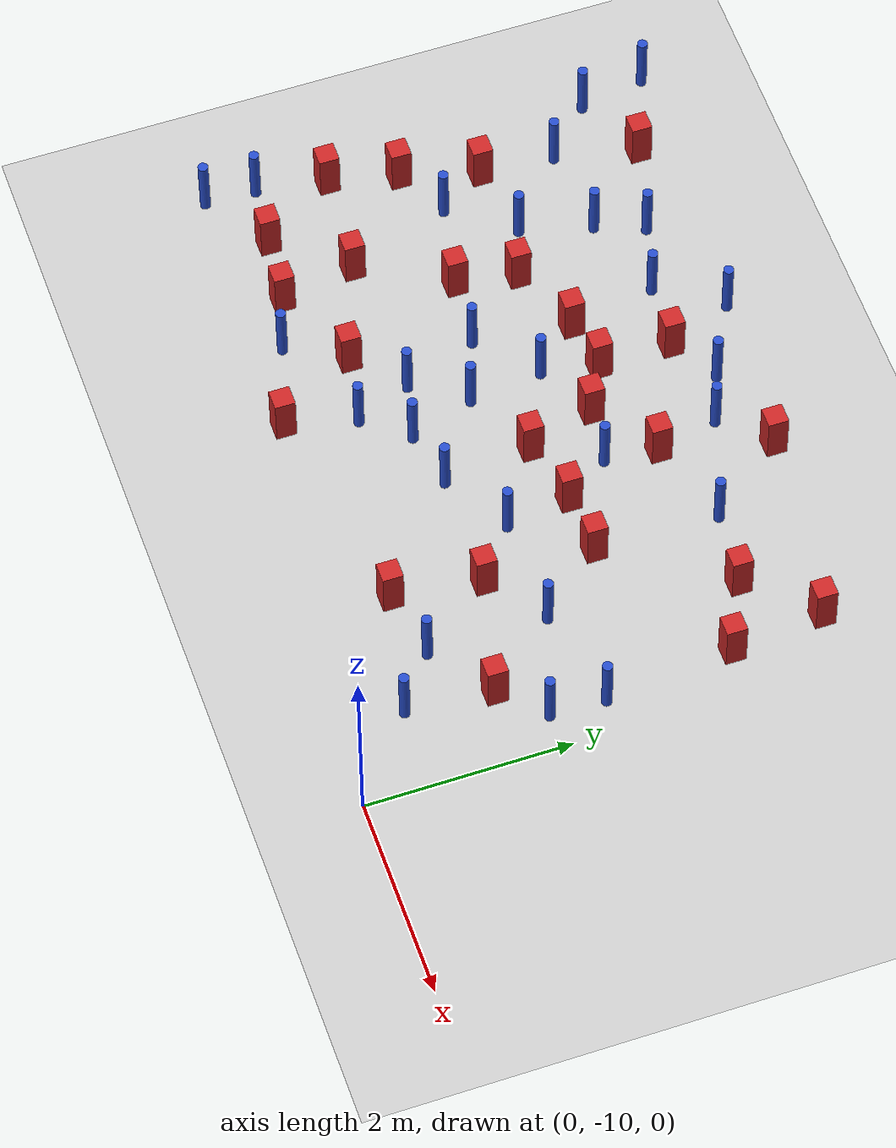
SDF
<sdf version="1.6">
 <world name="default">
  <model name="ground_plane">
   <static>1</static>
   <link name="link">
    <collision name="collision">
     <geometry><plane><normal>0 0 1</normal><size>100 100</size></plane></geometry>
     <surface><friction><ode><mu>100</mu><mu2>50</mu2></ode></friction></surface>
    </collision>
    <visual name="visual">
     <cast_shadows>0</cast_shadows>
     <geometry><plane><normal>0 0 1</normal><size>100 100</size></plane></geometry>
     <material>
      <ambient>1.0 1.0 1.0 1.0</ambient>
      <diffuse>0.8 0.8 0.8 1.0</diffuse>
      <specular>0.01 0.01 0.01 1.000000</specular>
     </material>
    </visual>
   </link>
  </model>
  <model name="square_post_obstacle0">
   <static>true</static>
   <pose>-6.3512197902 -6.70146782533 1.91545236811e-07 -7.35059704564e-06 1.12565212e-07 2.39332434364e-05</pose>
   <link name="link">
    <pose>0 0 0.25 0 -0 0</pose>
    <inertial>
     <mass>100</mass>
     <inertia>
      <ixx>0.166667</ixx>
      <ixy>0</ixy>
      <ixz>0</ixz>
      <iyy>0.166667</iyy>
      <iyz>0</iyz>
      <izz>0.166667</izz>
     </inertia>
    </inertial>
    <collision name="collision"><geometry><box><size>.2 .2 .5</size></box></geometry></collision>
    <visual name="visual">
     <geometry><box><size>.2 .2 .5</size></box></geometry>
     <material>
      <script><name>Gazebo/Red</name><uri>file://media/materials/scripts/gazebo.material</uri></script>
     </material>
    </visual>
   </link>
  </model>
  <model name="pole_obstacle2">
   <static>true</static>
   <pose>-5.39988394094 -5.87913840747 7.38925637345e-09 -8.47170692796e-08 1.24976764786e-08 -1.74513093032e-07</pose>
   <link name="link">
    <pose>0 0 0.3 0 -0 0</pose>
    <inertial>
     <mass>1</mass>
     <inertia><ixx>0.145833</ixx><ixy>0</ixy><ixz>0</ixz><iyy>0.145833</iyy><iyz>0</iyz><izz>0.125</izz></inertia>
    </inertial>
    <collision name="collision">
     <geometry><cylinder><radius>0.05</radius><length>.6</length></cylinder></geometry>
    </collision>
    <visual name="visual">
     <geometry><cylinder><radius>0.05</radius><length>.6</length></cylinder></geometry>
     <material>
      <script><name>Gazebo/Blue</name><uri>file://media/materials/scripts/gazebo.material</uri></script>
     </material>
    </visual>
   </link>
  </model>
  <model name="pole_obstacle3">
   <static>true</static>
   <pose>-4.52345772594 -5.6103119745 7.38925637345e-09 -8.47170692796e-08 1.24976764786e-08 -1.74513093032e-07</pose>
   <link name="link">
    <pose>0 0 0.3 0 -0 0</pose>
    <inertial>
     <mass>1</mass>
     <inertia><ixx>0.145833</ixx><ixy>0</ixy><ixz>0</ixz><iyy>0.145833</iyy><iyz>0</iyz><izz>0.125</izz></inertia>
    </inertial>
    <collision name="collision">
     <geometry><cylinder><radius>0.05</radius><length>.6</length></cylinder></geometry>
    </collision>
    <visual name="visual">
     <geometry><cylinder><radius>0.05</radius><length>.6</length></cylinder></geometry>
     <material>
      <script><name>Gazebo/Blue</name><uri>file://media/materials/scripts/gazebo.material</uri></script>
     </material>
    </visual>
   </link>
  </model>
  <model name="pole_obstacle5">
   <static>true</static>
   <pose>-2.810442116 -6.70199553143 7.38925637345e-09 -8.47170692798e-08 1.24976765033e-08 -1.74513093019e-07</pose>
   <link name="link">
    <pose>0 0 0.3 0 -0 0</pose>
    <inertial>
     <mass>1</mass>
     <inertia><ixx>0.145833</ixx><ixy>0</ixy><ixz>0</ixz><iyy>0.145833</iyy><iyz>0</iyz><izz>0.125</izz></inertia>
    </inertial>
    <collision name="collision">
     <geometry><cylinder><radius>0.05</radius><length>.6</length></cylinder></geometry>
    </collision>
    <visual name="visual">
     <geometry><cylinder><radius>0.05</radius><length>.6</length></cylinder></geometry>
     <material>
      <script><name>Gazebo/Blue</name><uri>file://media/materials/scripts/gazebo.material</uri></script>
     </material>
    </visual>
   </link>
  </model>
  <model name="pole_obstacle6">
   <static>true</static>
   <pose>-6.87049068792 -8.80188207975 7.38925637345e-09 -8.471706928e-08 1.24976765081e-08 -1.74513093015e-07</pose>
   <link name="link">
    <pose>0 0 0.3 0 -0 0</pose>
    <inertial>
     <mass>1</mass>
     <inertia><ixx>0.145833</ixx><ixy>0</ixy><ixz>0</ixz><iyy>0.145833</iyy><iyz>0</iyz><izz>0.125</izz></inertia>
    </inertial>
    <collision name="collision">
     <geometry><cylinder><radius>0.05</radius><length>.6</length></cylinder></geometry>
    </collision>
    <visual name="visual">
     <geometry><cylinder><radius>0.05</radius><length>.6</length></cylinder></geometry>
     <material>
      <script><name>Gazebo/Blue</name><uri>file://media/materials/scripts/gazebo.material</uri></script>
     </material>
    </visual>
   </link>
  </model>
  <model name="square_post_obstacle5">
   <static>true</static>
   <pose>-5.07548429831 -6.76126637863 1.91545236811e-07 -7.35059704564e-06 1.12565212e-07 2.39332434364e-05</pose>
   <link name="link">
    <pose>0 0 0.25 0 -0 0</pose>
    <inertial>
     <mass>100</mass>
     <inertia>
      <ixx>0.166667</ixx>
      <ixy>0</ixy>
      <ixz>0</ixz>
      <iyy>0.166667</iyy>
      <iyz>0</iyz>
      <izz>0.166667</izz>
     </inertia>
    </inertial>
    <collision name="collision"><geometry><box><size>.2 .2 .5</size></box></geometry></collision>
    <visual name="visual">
     <geometry><box><size>.2 .2 .5</size></box></geometry>
     <material>
      <script><name>Gazebo/Red</name><uri>file://media/materials/scripts/gazebo.material</uri></script>
     </material>
    </visual>
   </link>
  </model>
  <model name="square_post_obstacle15">
   <static>true</static>
   <pose>-6.57224055143 -7.45140259841 1.91545236811e-07 -7.35059704564e-06 1.12565212e-07 2.39332434364e-05</pose>
   <link name="link">
    <pose>0 0 0.25 0 -0 0</pose>
    <inertial>
     <mass>100</mass>
     <inertia>
      <ixx>0.166667</ixx>
      <ixy>0</ixy>
      <ixz>0</ixz>
      <iyy>0.166667</iyy>
      <iyz>0</iyz>
      <izz>0.166667</izz>
     </inertia>
    </inertial>
    <collision name="collision"><geometry><box><size>.2 .2 .5</size></box></geometry></collision>
    <visual name="visual">
     <geometry><box><size>.2 .2 .5</size></box></geometry>
     <material>
      <script><name>Gazebo/Red</name><uri>file://media/materials/scripts/gazebo.material</uri></script>
     </material>
    </visual>
   </link>
  </model>
  <model name="pole_obstacle22">
   <static>true</static>
   <pose>-6.93283457791 -4.84045211363 7.38925637345e-09 -8.47170692796e-08 1.24976764786e-08 -1.74513093032e-07</pose>
   <link name="link">
    <pose>0 0 0.3 0 -0 0</pose>
    <inertial>
     <mass>1</mass>
     <inertia><ixx>0.145833</ixx><ixy>0</ixy><ixz>0</ixz><iyy>0.145833</iyy><iyz>0</iyz><izz>0.125</izz></inertia>
    </inertial>
    <collision name="collision">
     <geometry><cylinder><radius>0.05</radius><length>.6</length></cylinder></geometry>
    </collision>
    <visual name="visual">
     <geometry><cylinder><radius>0.05</radius><length>.6</length></cylinder></geometry>
     <material>
      <script><name>Gazebo/Blue</name><uri>file://media/materials/scripts/gazebo.material</uri></script>
     </material>
    </visual>
   </link>
  </model>
  <model name="pole_obstacle27">
   <static>true</static>
   <pose>-2.89157052245 -5.57234434956 7.38925637345e-09 -8.47170692798e-08 1.24976765033e-08 -1.74513093019e-07</pose>
   <link name="link">
    <pose>0 0 0.3 0 -0 0</pose>
    <inertial>
     <mass>1</mass>
     <inertia><ixx>0.145833</ixx><ixy>0</ixy><ixz>0</ixz><iyy>0.145833</iyy><iyz>0</iyz><izz>0.125</izz></inertia>
    </inertial>
    <collision name="collision">
     <geometry><cylinder><radius>0.05</radius><length>.6</length></cylinder></geometry>
    </collision>
    <visual name="visual">
     <geometry><cylinder><radius>0.05</radius><length>.6</length></cylinder></geometry>
     <material>
      <script><name>Gazebo/Blue</name><uri>file://media/materials/scripts/gazebo.material</uri></script>
     </material>
    </visual>
   </link>
  </model>
  <model name="square_post_obstacle20">
   <static>true</static>
   <pose>-6.73766714522 -8.12133309598 1.91545236811e-07 -7.35059704564e-06 1.12565212e-07 2.39332434364e-05</pose>
   <link name="link">
    <pose>0 0 0.25 0 -0 0</pose>
    <inertial>
     <mass>100</mass>
     <inertia>
      <ixx>0.166667</ixx>
      <ixy>0</ixy>
      <ixz>0</ixz>
      <iyy>0.166667</iyy>
      <iyz>0</iyz>
      <izz>0.166667</izz>
     </inertia>
    </inertial>
    <collision name="collision"><geometry><box><size>.2 .2 .5</size></box></geometry></collision>
    <visual name="visual">
     <geometry><box><size>.2 .2 .5</size></box></geometry>
     <material>
      <script><name>Gazebo/Red</name><uri>file://media/materials/scripts/gazebo.material</uri></script>
     </material>
    </visual>
   </link>
  </model>
  <model name="square_post_obstacle21">
   <static>true</static>
   <pose>-0.441081011858 -6.31642284069 1.91545236811e-07 -7.35059704564e-06 1.12565212e-07 2.39332434364e-05</pose>
   <link name="link">
    <pose>0 0 0.25 0 -0 0</pose>
    <inertial>
     <mass>100</mass>
     <inertia>
      <ixx>0.166667</ixx>
      <ixy>0</ixy>
      <ixz>0</ixz>
      <iyy>0.166667</iyy>
      <iyz>0</iyz>
      <izz>0.166667</izz>
     </inertia>
    </inertial>
    <collision name="collision"><geometry><box><size>.2 .2 .5</size></box></geometry></collision>
    <visual name="visual">
     <geometry><box><size>.2 .2 .5</size></box></geometry>
     <material>
      <script><name>Gazebo/Red</name><uri>file://media/materials/scripts/gazebo.material</uri></script>
     </material>
    </visual>
   </link>
  </model>
  <model name="square_post_obstacle24">
   <static>true</static>
   <pose>-3.36370707958 -6.63593774003 1.91545236811e-07 -7.35059704564e-06 1.12565212e-07 2.39332434364e-05</pose>
   <link name="link">
    <pose>0 0 0.25 0 -0 0</pose>
    <inertial>
     <mass>100</mass>
     <inertia>
      <ixx>0.166667</ixx>
      <ixy>0</ixy>
      <ixz>0</ixz>
      <iyy>0.166667</iyy>
      <iyz>0</iyz>
      <izz>0.166667</izz>
     </inertia>
    </inertial>
    <collision name="collision"><geometry><box><size>.2 .2 .5</size></box></geometry></collision>
    <visual name="visual">
     <geometry><box><size>.2 .2 .5</size></box></geometry>
     <material>
      <script><name>Gazebo/Red</name><uri>file://media/materials/scripts/gazebo.material</uri></script>
     </material>
    </visual>
   </link>
  </model>
  <model name="pole_obstacle36">
   <static>true</static>
   <pose>-0.343696706962 -8.11001950035 7.38925637345e-09 -8.47170692796e-08 1.24976764724e-08 -1.74513093036e-07</pose>
   <link name="link">
    <pose>0 0 0.3 0 -0 0</pose>
    <inertial>
     <mass>1</mass>
     <inertia><ixx>0.145833</ixx><ixy>0</ixy><ixz>0</ixz><iyy>0.145833</iyy><iyz>0</iyz><izz>0.125</izz></inertia>
    </inertial>
    <collision name="collision">
     <geometry><cylinder><radius>0.05</radius><length>.6</length></cylinder></geometry>
    </collision>
    <visual name="visual">
     <geometry><cylinder><radius>0.05</radius><length>.6</length></cylinder></geometry>
     <material>
      <script><name>Gazebo/Blue</name><uri>file://media/materials/scripts/gazebo.material</uri></script>
     </material>
    </visual>
   </link>
  </model>
  <model name="pole_obstacle41">
   <static>true</static>
   <pose>-3.64347998608 -8.2976124966 7.38925637345e-09 -8.47170692793e-08 1.24976764408e-08 -1.74513093041e-07</pose>
   <link name="link">
    <pose>0 0 0.3 0 -0 0</pose>
    <inertial>
     <mass>1</mass>
     <inertia><ixx>0.145833</ixx><ixy>0</ixy><ixz>0</ixz><iyy>0.145833</iyy><iyz>0</iyz><izz>0.125</izz></inertia>
    </inertial>
    <collision name="collision">
     <geometry><cylinder><radius>0.05</radius><length>.6</length></cylinder></geometry>
    </collision>
    <visual name="visual">
     <geometry><cylinder><radius>0.05</radius><length>.6</length></cylinder></geometry>
     <material>
      <script><name>Gazebo/Blue</name><uri>file://media/materials/scripts/gazebo.material</uri></script>
     </material>
    </visual>
   </link>
  </model>
  <model name="pole_obstacle47">
   <static>true</static>
   <pose>-6.0551781899 -7.17259727057 7.38925637345e-09 -8.47170692796e-08 1.24976764786e-08 -1.74513093032e-07</pose>
   <link name="link">
    <pose>0 0 0.3 0 -0 0</pose>
    <inertial>
     <mass>1</mass>
     <inertia><ixx>0.145833</ixx><ixy>0</ixy><ixz>0</ixz><iyy>0.145833</iyy><iyz>0</iyz><izz>0.125</izz></inertia>
    </inertial>
    <collision name="collision">
     <geometry><cylinder><radius>0.05</radius><length>.6</length></cylinder></geometry>
    </collision>
    <visual name="visual">
     <geometry><cylinder><radius>0.05</radius><length>.6</length></cylinder></geometry>
     <material>
      <script><name>Gazebo/Blue</name><uri>file://media/materials/scripts/gazebo.material</uri></script>
     </material>
    </visual>
   </link>
  </model>
  <model name="square_post_obstacle37">
   <static>true</static>
   <pose>-0.727940815586 -8.50083348438 1.91545236811e-07 -7.35059704564e-06 1.12565212e-07 2.39332434364e-05</pose>
   <link name="link">
    <pose>0 0 0.25 0 -0 0</pose>
    <inertial>
     <mass>100</mass>
     <inertia>
      <ixx>0.166667</ixx>
      <ixy>0</ixy>
      <ixz>0</ixz>
      <iyy>0.166667</iyy>
      <iyz>0</iyz>
      <izz>0.166667</izz>
     </inertia>
    </inertial>
    <collision name="collision"><geometry><box><size>.2 .2 .5</size></box></geometry></collision>
    <visual name="visual">
     <geometry><box><size>.2 .2 .5</size></box></geometry>
     <material>
      <script><name>Gazebo/Red</name><uri>file://media/materials/scripts/gazebo.material</uri></script>
     </material>
    </visual>
   </link>
  </model>
  <model name="square_post_obstacle44">
   <static>true</static>
   <pose>-2.00762837462 -9.06628931698 1.91545236811e-07 -7.35059704564e-06 1.12565212e-07 2.39332434364e-05</pose>
   <link name="link">
    <pose>0 0 0.25 0 -0 0</pose>
    <inertial>
     <mass>100</mass>
     <inertia>
      <ixx>0.166667</ixx>
      <ixy>0</ixy>
      <ixz>0</ixz>
      <iyy>0.166667</iyy>
      <iyz>0</iyz>
      <izz>0.166667</izz>
     </inertia>
    </inertial>
    <collision name="collision"><geometry><box><size>.2 .2 .5</size></box></geometry></collision>
    <visual name="visual">
     <geometry><box><size>.2 .2 .5</size></box></geometry>
     <material>
      <script><name>Gazebo/Red</name><uri>file://media/materials/scripts/gazebo.material</uri></script>
     </material>
    </visual>
   </link>
  </model>
  <model name="pole_obstacle63">
   <static>true</static>
   <pose>-1.33499532294 -7.77846057803 7.38925637345e-09 -8.47170692799e-08 1.24976765033e-08 -1.74513093018e-07</pose>
   <link name="link">
    <pose>0 0 0.3 0 -0 0</pose>
    <inertial>
     <mass>1</mass>
     <inertia><ixx>0.145833</ixx><ixy>0</ixy><ixz>0</ixz><iyy>0.145833</iyy><iyz>0</iyz><izz>0.125</izz></inertia>
    </inertial>
    <collision name="collision">
     <geometry><cylinder><radius>0.05</radius><length>.6</length></cylinder></geometry>
    </collision>
    <visual name="visual">
     <geometry><cylinder><radius>0.05</radius><length>.6</length></cylinder></geometry>
     <material>
      <script><name>Gazebo/Blue</name><uri>file://media/materials/scripts/gazebo.material</uri></script>
     </material>
    </visual>
   </link>
  </model>
  <model name="pole_obstacle68">
   <static>true</static>
   <pose>-3.98675949757 -8.71420065586 7.38925637345e-09 -8.47170692798e-08 1.24976764891e-08 -1.74513093027e-07</pose>
   <link name="link">
    <pose>0 0 0.3 0 -0 0</pose>
    <inertial>
     <mass>1</mass>
     <inertia><ixx>0.145833</ixx><ixy>0</ixy><ixz>0</ixz><iyy>0.145833</iyy><iyz>0</iyz><izz>0.125</izz></inertia>
    </inertial>
    <collision name="collision">
     <geometry><cylinder><radius>0.05</radius><length>.6</length></cylinder></geometry>
    </collision>
    <visual name="visual">
     <geometry><cylinder><radius>0.05</radius><length>.6</length></cylinder></geometry>
     <material>
      <script><name>Gazebo/Blue</name><uri>file://media/materials/scripts/gazebo.material</uri></script>
     </material>
    </visual>
   </link>
  </model>
  <model name="square_post_obstacle55">
   <static>true</static>
   <pose>-2.74329294276 -6.19086282878 1.91545236811e-07 -7.35059704564e-06 1.12565212e-07 2.39332434364e-05</pose>
   <link name="link">
    <pose>0 0 0.25 0 -0 0</pose>
    <inertial>
     <mass>100</mass>
     <inertia>
      <ixx>0.166667</ixx>
      <ixy>0</ixy>
      <ixz>0</ixz>
      <iyy>0.166667</iyy>
      <iyz>0</iyz>
      <izz>0.166667</izz>
     </inertia>
    </inertial>
    <collision name="collision"><geometry><box><size>.2 .2 .5</size></box></geometry></collision>
    <visual name="visual">
     <geometry><box><size>.2 .2 .5</size></box></geometry>
     <material>
      <script><name>Gazebo/Red</name><uri>file://media/materials/scripts/gazebo.material</uri></script>
     </material>
    </visual>
   </link>
  </model>
  <model name="square_post_obstacle58">
   <static>true</static>
   <pose>-1.11318636053 -6.00602562814 1.91545236811e-07 -7.35059704564e-06 1.12565212e-07 2.39332434364e-05</pose>
   <link name="link">
    <pose>0 0 0.25 0 -0 0</pose>
    <inertial>
     <mass>100</mass>
     <inertia>
      <ixx>0.166667</ixx>
      <ixy>0</ixy>
      <ixz>0</ixz>
      <iyy>0.166667</iyy>
      <iyz>0</iyz>
      <izz>0.166667</izz>
     </inertia>
    </inertial>
    <collision name="collision"><geometry><box><size>.2 .2 .5</size></box></geometry></collision>
    <visual name="visual">
     <geometry><box><size>.2 .2 .5</size></box></geometry>
     <material>
      <script><name>Gazebo/Red</name><uri>file://media/materials/scripts/gazebo.material</uri></script>
     </material>
    </visual>
   </link>
  </model>
  <model name="pole_obstacle73">
   <static>true</static>
   <pose>-6.3123474597 -5.96353737594 7.38925637345e-09 -8.47170692796e-08 1.24976764786e-08 -1.74513093032e-07</pose>
   <link name="link">
    <pose>0 0 0.3 0 -0 0</pose>
    <inertial>
     <mass>1</mass>
     <inertia><ixx>0.145833</ixx><ixy>0</ixy><ixz>0</ixz><iyy>0.145833</iyy><iyz>0</iyz><izz>0.125</izz></inertia>
    </inertial>
    <collision name="collision">
     <geometry><cylinder><radius>0.05</radius><length>.6</length></cylinder></geometry>
    </collision>
    <visual name="visual">
     <geometry><cylinder><radius>0.05</radius><length>.6</length></cylinder></geometry>
     <material>
      <script><name>Gazebo/Blue</name><uri>file://media/materials/scripts/gazebo.material</uri></script>
     </material>
    </visual>
   </link>
  </model>
  <model name="pole_obstacle74">
   <static>true</static>
   <pose>-3.9459415511 -6.92952535661 7.38925637345e-09 -8.47170692794e-08 1.24976764468e-08 -1.7451309304e-07</pose>
   <link name="link">
    <pose>0 0 0.3 0 -0 0</pose>
    <inertial>
     <mass>1</mass>
     <inertia><ixx>0.145833</ixx><ixy>0</ixy><ixz>0</ixz><iyy>0.145833</iyy><iyz>0</iyz><izz>0.125</izz></inertia>
    </inertial>
    <collision name="collision">
     <geometry><cylinder><radius>0.05</radius><length>.6</length></cylinder></geometry>
    </collision>
    <visual name="visual">
     <geometry><cylinder><radius>0.05</radius><length>.6</length></cylinder></geometry>
     <material>
      <script><name>Gazebo/Blue</name><uri>file://media/materials/scripts/gazebo.material</uri></script>
     </material>
    </visual>
   </link>
  </model>
  <model name="pole_obstacle85">
   <static>true</static>
   <pose>-6.89441321147 -9.30156373677 7.38925637345e-09 -8.471706928e-08 1.24976765081e-08 -1.74513093015e-07</pose>
   <link name="link">
    <pose>0 0 0.3 0 -0 0</pose>
    <inertial>
     <mass>1</mass>
     <inertia><ixx>0.145833</ixx><ixy>0</ixy><ixz>0</ixz><iyy>0.145833</iyy><iyz>0</iyz><izz>0.125</izz></inertia>
    </inertial>
    <collision name="collision">
     <geometry><cylinder><radius>0.05</radius><length>.6</length></cylinder></geometry>
    </collision>
    <visual name="visual">
     <geometry><cylinder><radius>0.05</radius><length>.6</length></cylinder></geometry>
     <material>
      <script><name>Gazebo/Blue</name><uri>file://media/materials/scripts/gazebo.material</uri></script>
     </material>
    </visual>
   </link>
  </model>
  <model name="square_post_obstacle80">
   <static>true</static>
   <pose>-5.67727545034 -8.21616542132 1.91545236811e-07 -7.35059704564e-06 1.12565212e-07 2.39332434364e-05</pose>
   <link name="link">
    <pose>0 0 0.25 0 -0 0</pose>
    <inertial>
     <mass>100</mass>
     <inertia>
      <ixx>0.166667</ixx>
      <ixy>0</ixy>
      <ixz>0</ixz>
      <iyy>0.166667</iyy>
      <iyz>0</iyz>
      <izz>0.166667</izz>
     </inertia>
    </inertial>
    <collision name="collision"><geometry><box><size>.2 .2 .5</size></box></geometry></collision>
    <visual name="visual">
     <geometry><box><size>.2 .2 .5</size></box></geometry>
     <material>
      <script><name>Gazebo/Red</name><uri>file://media/materials/scripts/gazebo.material</uri></script>
     </material>
    </visual>
   </link>
  </model>
  <model name="square_post_obstacle89">
   <static>true</static>
   <pose>-6.11698900111 -5.16930960928 1.91545236811e-07 -7.35059704564e-06 1.12565212e-07 2.39332434364e-05</pose>
   <link name="link">
    <pose>0 0 0.25 0 -0 0</pose>
    <inertial>
     <mass>100</mass>
     <inertia>
      <ixx>0.166667</ixx>
      <ixy>0</ixy>
      <ixz>0</ixz>
      <iyy>0.166667</iyy>
      <iyz>0</iyz>
      <izz>0.166667</izz>
     </inertia>
    </inertial>
    <collision name="collision"><geometry><box><size>.2 .2 .5</size></box></geometry></collision>
    <visual name="visual">
     <geometry><box><size>.2 .2 .5</size></box></geometry>
     <material>
      <script><name>Gazebo/Red</name><uri>file://media/materials/scripts/gazebo.material</uri></script>
     </material>
    </visual>
   </link>
  </model>
  <model name="pole_obstacle99">
   <static>true</static>
   <pose>-5.59341617314 -6.5724748177 7.38925637345e-09 -8.47170692796e-08 1.24976764786e-08 -1.74513093032e-07</pose>
   <link name="link">
    <pose>0 0 0.3 0 -0 0</pose>
    <inertial>
     <mass>1</mass>
     <inertia><ixx>0.145833</ixx><ixy>0</ixy><ixz>0</ixz><iyy>0.145833</iyy><iyz>0</iyz><izz>0.125</izz></inertia>
    </inertial>
    <collision name="collision">
     <geometry><cylinder><radius>0.05</radius><length>.6</length></cylinder></geometry>
    </collision>
    <visual name="visual">
     <geometry><cylinder><radius>0.05</radius><length>.6</length></cylinder></geometry>
     <material>
      <script><name>Gazebo/Blue</name><uri>file://media/materials/scripts/gazebo.material</uri></script>
     </material>
    </visual>
   </link>
  </model>
  <model name="pole_obstacle109">
   <static>true</static>
   <pose>-0.804273129045 -9.33447368787 7.38925637345e-09 -8.47170692797e-08 1.249767648e-08 -1.74513093032e-07</pose>
   <link name="link">
    <pose>0 0 0.3 0 -0 0</pose>
    <inertial>
     <mass>1</mass>
     <inertia><ixx>0.145833</ixx><ixy>0</ixy><ixz>0</ixz><iyy>0.145833</iyy><iyz>0</iyz><izz>0.125</izz></inertia>
    </inertial>
    <collision name="collision">
     <geometry><cylinder><radius>0.05</radius><length>.6</length></cylinder></geometry>
    </collision>
    <visual name="visual">
     <geometry><cylinder><radius>0.05</radius><length>.6</length></cylinder></geometry>
     <material>
      <script><name>Gazebo/Blue</name><uri>file://media/materials/scripts/gazebo.material</uri></script>
     </material>
    </visual>
   </link>
  </model>
  <model name="square_post_obstacle108">
   <static>true</static>
   <pose>-1.883781542 -8.20645368936 1.91545236811e-07 -7.35059704564e-06 1.12565212e-07 2.39332434364e-05</pose>
   <link name="link">
    <pose>0 0 0.25 0 -0 0</pose>
    <inertial>
     <mass>100</mass>
     <inertia>
      <ixx>0.166667</ixx>
      <ixy>0</ixy>
      <ixz>0</ixz>
      <iyy>0.166667</iyy>
      <iyz>0</iyz>
      <izz>0.166667</izz>
     </inertia>
    </inertial>
    <collision name="collision"><geometry><box><size>.2 .2 .5</size></box></geometry></collision>
    <visual name="visual">
     <geometry><box><size>.2 .2 .5</size></box></geometry>
     <material>
      <script><name>Gazebo/Red</name><uri>file://media/materials/scripts/gazebo.material</uri></script>
     </material>
    </visual>
   </link>
  </model>
  <model name="square_post_obstacle114">
   <static>true</static>
   <pose>-4.15753286613 -9.39936051822 1.91545236811e-07 -7.35059704564e-06 1.12565212e-07 2.39332434364e-05</pose>
   <link name="link">
    <pose>0 0 0.25 0 -0 0</pose>
    <inertial>
     <mass>100</mass>
     <inertia>
      <ixx>0.166667</ixx>
      <ixy>0</ixy>
      <ixz>0</ixz>
      <iyy>0.166667</iyy>
      <iyz>0</iyz>
      <izz>0.166667</izz>
     </inertia>
    </inertial>
    <collision name="collision"><geometry><box><size>.2 .2 .5</size></box></geometry></collision>
    <visual name="visual">
     <geometry><box><size>.2 .2 .5</size></box></geometry>
     <material>
      <script><name>Gazebo/Red</name><uri>file://media/materials/scripts/gazebo.material</uri></script>
     </material>
    </visual>
   </link>
  </model>
  <model name="square_post_obstacle121">
   <static>true</static>
   <pose>-3.83797552697 -5.66766873882 1.91545236811e-07 -7.35059704564e-06 1.12565212e-07 2.39332434364e-05</pose>
   <link name="link">
    <pose>0 0 0.25 0 -0 0</pose>
    <inertial>
     <mass>100</mass>
     <inertia>
      <ixx>0.166667</ixx>
      <ixy>0</ixy>
      <ixz>0</ixz>
      <iyy>0.166667</iyy>
      <iyz>0</iyz>
      <izz>0.166667</izz>
     </inertia>
    </inertial>
    <collision name="collision"><geometry><box><size>.2 .2 .5</size></box></geometry></collision>
    <visual name="visual">
     <geometry><box><size>.2 .2 .5</size></box></geometry>
     <material>
      <script><name>Gazebo/Red</name><uri>file://media/materials/scripts/gazebo.material</uri></script>
     </material>
    </visual>
   </link>
  </model>
  <model name="pole_obstacle123">
   <static>true</static>
   <pose>-5.01036146525 -9.13374318421 7.38925637345e-09 -8.471706928e-08 1.24976765081e-08 -1.74513093015e-07</pose>
   <link name="link">
    <pose>0 0 0.3 0 -0 0</pose>
    <inertial>
     <mass>1</mass>
     <inertia><ixx>0.145833</ixx><ixy>0</ixy><ixz>0</ixz><iyy>0.145833</iyy><iyz>0</iyz><izz>0.125</izz></inertia>
    </inertial>
    <collision name="collision">
     <geometry><cylinder><radius>0.05</radius><length>.6</length></cylinder></geometry>
    </collision>
    <visual name="visual">
     <geometry><cylinder><radius>0.05</radius><length>.6</length></cylinder></geometry>
     <material>
      <script><name>Gazebo/Blue</name><uri>file://media/materials/scripts/gazebo.material</uri></script>
     </material>
    </visual>
   </link>
  </model>
  <model name="pole_obstacle124">
   <static>true</static>
   <pose>-1.33243832689 -8.93993852028 7.38925637345e-09 -8.47170692798e-08 1.24976764881e-08 -1.74513093027e-07</pose>
   <link name="link">
    <pose>0 0 0.3 0 -0 0</pose>
    <inertial>
     <mass>1</mass>
     <inertia><ixx>0.145833</ixx><ixy>0</ixy><ixz>0</ixz><iyy>0.145833</iyy><iyz>0</iyz><izz>0.125</izz></inertia>
    </inertial>
    <collision name="collision">
     <geometry><cylinder><radius>0.05</radius><length>.6</length></cylinder></geometry>
    </collision>
    <visual name="visual">
     <geometry><cylinder><radius>0.05</radius><length>.6</length></cylinder></geometry>
     <material>
      <script><name>Gazebo/Blue</name><uri>file://media/materials/scripts/gazebo.material</uri></script>
     </material>
    </visual>
   </link>
  </model>
  <model name="square_post_obstacle136">
   <static>true</static>
   <pose>-0.534241347155 -5.4085730771 1.91545236811e-07 -7.35059704564e-06 1.12565212e-07 2.39332434364e-05</pose>
   <link name="link">
    <pose>0 0 0.25 0 -0 0</pose>
    <inertial>
     <mass>100</mass>
     <inertia>
      <ixx>0.166667</ixx>
      <ixy>0</ixy>
      <ixz>0</ixz>
      <iyy>0.166667</iyy>
      <iyz>0</iyz>
      <izz>0.166667</izz>
     </inertia>
    </inertial>
    <collision name="collision"><geometry><box><size>.2 .2 .5</size></box></geometry></collision>
    <visual name="visual">
     <geometry><box><size>.2 .2 .5</size></box></geometry>
     <material>
      <script><name>Gazebo/Red</name><uri>file://media/materials/scripts/gazebo.material</uri></script>
     </material>
    </visual>
   </link>
  </model>
  <model name="pole_obstacle146">
   <static>true</static>
   <pose>-2.41075248903 -7.79369760753 7.38925637345e-09 -8.47170692798e-08 1.24976765033e-08 -1.74513093019e-07</pose>
   <link name="link">
    <pose>0 0 0.3 0 -0 0</pose>
    <inertial>
     <mass>1</mass>
     <inertia><ixx>0.145833</ixx><ixy>0</ixy><ixz>0</ixz><iyy>0.145833</iyy><iyz>0</iyz><izz>0.125</izz></inertia>
    </inertial>
    <collision name="collision">
     <geometry><cylinder><radius>0.05</radius><length>.6</length></cylinder></geometry>
    </collision>
    <visual name="visual">
     <geometry><cylinder><radius>0.05</radius><length>.6</length></cylinder></geometry>
     <material>
      <script><name>Gazebo/Blue</name><uri>file://media/materials/scripts/gazebo.material</uri></script>
     </material>
    </visual>
   </link>
  </model>
  <model name="pole_obstacle147">
   <static>true</static>
   <pose>-1.87128350248 -5.91327902509 7.38925637345e-09 -8.47170692799e-08 1.24976765033e-08 -1.74513093018e-07</pose>
   <link name="link">
    <pose>0 0 0.3 0 -0 0</pose>
    <inertial>
     <mass>1</mass>
     <inertia><ixx>0.145833</ixx><ixy>0</ixy><ixz>0</ixz><iyy>0.145833</iyy><iyz>0</iyz><izz>0.125</izz></inertia>
    </inertial>
    <collision name="collision">
     <geometry><cylinder><radius>0.05</radius><length>.6</length></cylinder></geometry>
    </collision>
    <visual name="visual">
     <geometry><cylinder><radius>0.05</radius><length>.6</length></cylinder></geometry>
     <material>
      <script><name>Gazebo/Blue</name><uri>file://media/materials/scripts/gazebo.material</uri></script>
     </material>
    </visual>
   </link>
  </model>
  <model name="pole_obstacle152">
   <static>true</static>
   <pose>-0.322843855971 -7.57031097677 7.38925637345e-09 -8.471706928e-08 1.24976765079e-08 -1.74513093015e-07</pose>
   <link name="link">
    <pose>0 0 0.3 0 -0 0</pose>
    <inertial>
     <mass>1</mass>
     <inertia><ixx>0.145833</ixx><ixy>0</ixy><ixz>0</ixz><iyy>0.145833</iyy><iyz>0</iyz><izz>0.125</izz></inertia>
    </inertial>
    <collision name="collision">
     <geometry><cylinder><radius>0.05</radius><length>.6</length></cylinder></geometry>
    </collision>
    <visual name="visual">
     <geometry><cylinder><radius>0.05</radius><length>.6</length></cylinder></geometry>
     <material>
      <script><name>Gazebo/Blue</name><uri>file://media/materials/scripts/gazebo.material</uri></script>
     </material>
    </visual>
   </link>
  </model>
  <model name="pole_obstacle153">
   <static>true</static>
   <pose>-3.06489835788 -8.17871671743 7.38925637345e-09 -8.47170692793e-08 1.24976764408e-08 -1.74513093041e-07</pose>
   <link name="link">
    <pose>0 0 0.3 0 -0 0</pose>
    <inertial>
     <mass>1</mass>
     <inertia><ixx>0.145833</ixx><ixy>0</ixy><ixz>0</ixz><iyy>0.145833</iyy><iyz>0</iyz><izz>0.125</izz></inertia>
    </inertial>
    <collision name="collision">
     <geometry><cylinder><radius>0.05</radius><length>.6</length></cylinder></geometry>
    </collision>
    <visual name="visual">
     <geometry><cylinder><radius>0.05</radius><length>.6</length></cylinder></geometry>
     <material>
      <script><name>Gazebo/Blue</name><uri>file://media/materials/scripts/gazebo.material</uri></script>
     </material>
    </visual>
   </link>
  </model>
  <model name="pole_obstacle160">
   <static>true</static>
   <pose>-4.10963742803 -5.002402878 7.38925637345e-09 -8.47170692796e-08 1.24976764786e-08 -1.74513093032e-07</pose>
   <link name="link">
    <pose>0 0 0.3 0 -0 0</pose>
    <inertial>
     <mass>1</mass>
     <inertia><ixx>0.145833</ixx><ixy>0</ixy><ixz>0</ixz><iyy>0.145833</iyy><iyz>0</iyz><izz>0.125</izz></inertia>
    </inertial>
    <collision name="collision">
     <geometry><cylinder><radius>0.05</radius><length>.6</length></cylinder></geometry>
    </collision>
    <visual name="visual">
     <geometry><cylinder><radius>0.05</radius><length>.6</length></cylinder></geometry>
     <material>
      <script><name>Gazebo/Blue</name><uri>file://media/materials/scripts/gazebo.material</uri></script>
     </material>
    </visual>
   </link>
  </model>
  <model name="pole_obstacle162">
   <static>true</static>
   <pose>-4.21085236895 -8.16012603941 7.38925637345e-09 -8.471706928e-08 1.24976765081e-08 -1.74513093015e-07</pose>
   <link name="link">
    <pose>0 0 0.3 0 -0 0</pose>
    <inertial>
     <mass>1</mass>
     <inertia><ixx>0.145833</ixx><ixy>0</ixy><ixz>0</ixz><iyy>0.145833</iyy><iyz>0</iyz><izz>0.125</izz></inertia>
    </inertial>
    <collision name="collision">
     <geometry><cylinder><radius>0.05</radius><length>.6</length></cylinder></geometry>
    </collision>
    <visual name="visual">
     <geometry><cylinder><radius>0.05</radius><length>.6</length></cylinder></geometry>
     <material>
      <script><name>Gazebo/Blue</name><uri>file://media/materials/scripts/gazebo.material</uri></script>
     </material>
    </visual>
   </link>
  </model>
  <model name="square_post_obstacle157">
   <static>true</static>
   <pose>-5.17941076749 -7.35699127891 1.91545236811e-07 -7.35059704564e-06 1.12565212e-07 2.39332434364e-05</pose>
   <link name="link">
    <pose>0 0 0.25 0 -0 0</pose>
    <inertial>
     <mass>100</mass>
     <inertia>
      <ixx>0.166667</ixx>
      <ixy>0</ixy>
      <ixz>0</ixz>
      <iyy>0.166667</iyy>
      <iyz>0</iyz>
      <izz>0.166667</izz>
     </inertia>
    </inertial>
    <collision name="collision"><geometry><box><size>.2 .2 .5</size></box></geometry></collision>
    <visual name="visual">
     <geometry><box><size>.2 .2 .5</size></box></geometry>
     <material>
      <script><name>Gazebo/Red</name><uri>file://media/materials/scripts/gazebo.material</uri></script>
     </material>
    </visual>
   </link>
  </model>
  <model name="pole_obstacle166">
   <static>true</static>
   <pose>-5.21358893601 -5.41015380495 7.38925637345e-09 -8.47170692796e-08 1.24976764786e-08 -1.74513093032e-07</pose>
   <link name="link">
    <pose>0 0 0.3 0 -0 0</pose>
    <inertial>
     <mass>1</mass>
     <inertia><ixx>0.145833</ixx><ixy>0</ixy><ixz>0</ixz><iyy>0.145833</iyy><iyz>0</iyz><izz>0.125</izz></inertia>
    </inertial>
    <collision name="collision">
     <geometry><cylinder><radius>0.05</radius><length>.6</length></cylinder></geometry>
    </collision>
    <visual name="visual">
     <geometry><cylinder><radius>0.05</radius><length>.6</length></cylinder></geometry>
     <material>
      <script><name>Gazebo/Blue</name><uri>file://media/materials/scripts/gazebo.material</uri></script>
     </material>
    </visual>
   </link>
  </model>
  <model name="square_post_obstacle166">
   <static>true</static>
   <pose>-3.1501099521 -7.31124188229 1.91545236811e-07 -7.35059704564e-06 1.12565212e-07 2.39332434364e-05</pose>
   <link name="link">
    <pose>0 0 0.25 0 -0 0</pose>
    <inertial>
     <mass>100</mass>
     <inertia>
      <ixx>0.166667</ixx>
      <ixy>0</ixy>
      <ixz>0</ixz>
      <iyy>0.166667</iyy>
      <iyz>0</iyz>
      <izz>0.166667</izz>
     </inertia>
    </inertial>
    <collision name="collision"><geometry><box><size>.2 .2 .5</size></box></geometry></collision>
    <visual name="visual">
     <geometry><box><size>.2 .2 .5</size></box></geometry>
     <material>
      <script><name>Gazebo/Red</name><uri>file://media/materials/scripts/gazebo.material</uri></script>
     </material>
    </visual>
   </link>
  </model>
  <model name="square_post_obstacle168">
   <static>true</static>
   <pose>-2.49380710719 -7.16336011091 1.91545236811e-07 -7.35059704564e-06 1.12565212e-07 2.39332434364e-05</pose>
   <link name="link">
    <pose>0 0 0.25 0 -0 0</pose>
    <inertial>
     <mass>100</mass>
     <inertia>
      <ixx>0.166667</ixx>
      <ixy>0</ixy>
      <ixz>0</ixz>
      <iyy>0.166667</iyy>
      <iyz>0</iyz>
      <izz>0.166667</izz>
     </inertia>
    </inertial>
    <collision name="collision"><geometry><box><size>.2 .2 .5</size></box></geometry></collision>
    <visual name="visual">
     <geometry><box><size>.2 .2 .5</size></box></geometry>
     <material>
      <script><name>Gazebo/Red</name><uri>file://media/materials/scripts/gazebo.material</uri></script>
     </material>
    </visual>
   </link>
  </model>
  <model name="square_post_obstacle175">
   <static>true</static>
   <pose>-4.67249819325 -8.58504659453 1.91545236811e-07 -7.35059704564e-06 1.12565212e-07 2.39332434364e-05</pose>
   <link name="link">
    <pose>0 0 0.25 0 -0 0</pose>
    <inertial>
     <mass>100</mass>
     <inertia>
      <ixx>0.166667</ixx>
      <ixy>0</ixy>
      <ixz>0</ixz>
      <iyy>0.166667</iyy>
      <iyz>0</iyz>
      <izz>0.166667</izz>
     </inertia>
    </inertial>
    <collision name="collision"><geometry><box><size>.2 .2 .5</size></box></geometry></collision>
    <visual name="visual">
     <geometry><box><size>.2 .2 .5</size></box></geometry>
     <material>
      <script><name>Gazebo/Red</name><uri>file://media/materials/scripts/gazebo.material</uri></script>
     </material>
    </visual>
   </link>
  </model>
  <model name="square_post_obstacle176">
   <static>true</static>
   <pose>-4.356689426 -6.47855273673 1.91545236811e-07 -7.35059704564e-06 1.12565212e-07 2.39332434364e-05</pose>
   <link name="link">
    <pose>0 0 0.25 0 -0 0</pose>
    <inertial>
     <mass>100</mass>
     <inertia>
      <ixx>0.166667</ixx>
      <ixy>0</ixy>
      <ixz>0</ixz>
      <iyy>0.166667</iyy>
      <iyz>0</iyz>
      <izz>0.166667</izz>
     </inertia>
    </inertial>
    <collision name="collision"><geometry><box><size>.2 .2 .5</size></box></geometry></collision>
    <visual name="visual">
     <geometry><box><size>.2 .2 .5</size></box></geometry>
     <material>
      <script><name>Gazebo/Red</name><uri>file://media/materials/scripts/gazebo.material</uri></script>
     </material>
    </visual>
   </link>
  </model>
  <model name="square_post_obstacle180">
   <static>true</static>
   <pose>-6.23156227073 -8.87892085175 1.91545236811e-07 -7.35059704564e-06 1.12565212e-07 2.39332434364e-05</pose>
   <link name="link">
    <pose>0 0 0.25 0 -0 0</pose>
    <inertial>
     <mass>100</mass>
     <inertia>
      <ixx>0.166667</ixx>
      <ixy>0</ixy>
      <ixz>0</ixz>
      <iyy>0.166667</iyy>
      <iyz>0</iyz>
      <izz>0.166667</izz>
     </inertia>
    </inertial>
    <collision name="collision"><geometry><box><size>.2 .2 .5</size></box></geometry></collision>
    <visual name="visual">
     <geometry><box><size>.2 .2 .5</size></box></geometry>
     <material>
      <script><name>Gazebo/Red</name><uri>file://media/materials/scripts/gazebo.material</uri></script>
     </material>
    </visual>
   </link>
  </model>
  <model name="square_post_obstacle197">
   <static>true</static>
   <pose>-3.82901291354 -6.38916982716 1.91545236811e-07 -7.35059704564e-06 1.12565212e-07 2.39332434364e-05</pose>
   <link name="link">
    <pose>0 0 0.25 0 -0 0</pose>
    <inertial>
     <mass>100</mass>
     <inertia>
      <ixx>0.166667</ixx>
      <ixy>0</ixy>
      <ixz>0</ixz>
      <iyy>0.166667</iyy>
      <iyz>0</iyz>
      <izz>0.166667</izz>
     </inertia>
    </inertial>
    <collision name="collision"><geometry><box><size>.2 .2 .5</size></box></geometry></collision>
    <visual name="visual">
     <geometry><box><size>.2 .2 .5</size></box></geometry>
     <material>
      <script><name>Gazebo/Red</name><uri>file://media/materials/scripts/gazebo.material</uri></script>
     </material>
    </visual>
   </link>
  </model>
  <model name="square_post_obstacle201">
   <static>true</static>
   <pose>-2.46727423991 -5.15268190029 1.91545236811e-07 -7.35059704564e-06 1.12565212e-07 2.39332434364e-05</pose>
   <link name="link">
    <pose>0 0 0.25 0 -0 0</pose>
    <inertial>
     <mass>100</mass>
     <inertia>
      <ixx>0.166667</ixx>
      <ixy>0</ixy>
      <ixz>0</ixz>
      <iyy>0.166667</iyy>
      <iyz>0</iyz>
      <izz>0.166667</izz>
     </inertia>
    </inertial>
    <collision name="collision"><geometry><box><size>.2 .2 .5</size></box></geometry></collision>
    <visual name="visual">
     <geometry><box><size>.2 .2 .5</size></box></geometry>
     <material>
      <script><name>Gazebo/Red</name><uri>file://media/materials/scripts/gazebo.material</uri></script>
     </material>
    </visual>
   </link>
  </model>
  <model name="square_post_obstacle202">
   <static>true</static>
   <pose>-5.54385447339 -8.95900013757 1.91545236811e-07 -7.35059704564e-06 1.12565212e-07 2.39332434364e-05</pose>
   <link name="link">
    <pose>0 0 0.25 0 -0 0</pose>
    <inertial>
     <mass>100</mass>
     <inertia>
      <ixx>0.166667</ixx>
      <ixy>0</ixy>
      <ixz>0</ixz>
      <iyy>0.166667</iyy>
      <iyz>0</iyz>
      <izz>0.166667</izz>
     </inertia>
    </inertial>
    <collision name="collision"><geometry><box><size>.2 .2 .5</size></box></geometry></collision>
    <visual name="visual">
     <geometry><box><size>.2 .2 .5</size></box></geometry>
     <material>
      <script><name>Gazebo/Red</name><uri>file://media/materials/scripts/gazebo.material</uri></script>
     </material>
    </visual>
   </link>
  </model>
  <model name="square_post_obstacle203">
   <static>true</static>
   <pose>-1.89131409838 -7.13294089994 1.91545236811e-07 -7.35059704564e-06 1.12565212e-07 2.39332434364e-05</pose>
   <link name="link">
    <pose>0 0 0.25 0 -0 0</pose>
    <inertial>
     <mass>100</mass>
     <inertia>
      <ixx>0.166667</ixx>
      <ixy>0</ixy>
      <ixz>0</ixz>
      <iyy>0.166667</iyy>
      <iyz>0</iyz>
      <izz>0.166667</izz>
     </inertia>
    </inertial>
    <collision name="collision"><geometry><box><size>.2 .2 .5</size></box></geometry></collision>
    <visual name="visual">
     <geometry><box><size>.2 .2 .5</size></box></geometry>
     <material>
      <script><name>Gazebo/Red</name><uri>file://media/materials/scripts/gazebo.material</uri></script>
     </material>
    </visual>
   </link>
  </model>
  <model name="pole_obstacle194">
   <static>true</static>
   <pose>-3.37290530294 -5.37971390722 7.38925637345e-09 -8.47170692798e-08 1.24976765033e-08 -1.74513093019e-07</pose>
   <link name="link">
    <pose>0 0 0.3 0 -0 0</pose>
    <inertial>
     <mass>1</mass>
     <inertia><ixx>0.145833</ixx><ixy>0</ixy><ixz>0</ixz><iyy>0.145833</iyy><iyz>0</iyz><izz>0.125</izz></inertia>
    </inertial>
    <collision name="collision">
     <geometry><cylinder><radius>0.05</radius><length>.6</length></cylinder></geometry>
    </collision>
    <visual name="visual">
     <geometry><cylinder><radius>0.05</radius><length>.6</length></cylinder></geometry>
     <material>
      <script><name>Gazebo/Blue</name><uri>file://media/materials/scripts/gazebo.material</uri></script>
     </material>
    </visual>
   </link>
  </model>
  <model name="pole_obstacle196">
   <static>true</static>
   <pose>-3.86206347277 -7.65215723631 7.38925637345e-09 -8.47170692798e-08 1.24976765033e-08 -1.74513093019e-07</pose>
   <link name="link">
    <pose>0 0 0.3 0 -0 0</pose>
    <inertial>
     <mass>1</mass>
     <inertia><ixx>0.145833</ixx><ixy>0</ixy><ixz>0</ixz><iyy>0.145833</iyy><iyz>0</iyz><izz>0.125</izz></inertia>
    </inertial>
    <collision name="collision">
     <geometry><cylinder><radius>0.05</radius><length>.6</length></cylinder></geometry>
    </collision>
    <visual name="visual">
     <geometry><cylinder><radius>0.05</radius><length>.6</length></cylinder></geometry>
     <material>
      <script><name>Gazebo/Blue</name><uri>file://media/materials/scripts/gazebo.material</uri></script>
     </material>
    </visual>
   </link>
  </model>
  <model name="pole_obstacle197">
   <static>true</static>
   <pose>-4.49724963097 -7.42014194814 7.38925637345e-09 -8.47170692796e-08 1.24976764786e-08 -1.74513093032e-07</pose>
   <link name="link">
    <pose>0 0 0.3 0 -0 0</pose>
    <inertial>
     <mass>1</mass>
     <inertia><ixx>0.145833</ixx><ixy>0</ixy><ixz>0</ixz><iyy>0.145833</iyy><iyz>0</iyz><izz>0.125</izz></inertia>
    </inertial>
    <collision name="collision">
     <geometry><cylinder><radius>0.05</radius><length>.6</length></cylinder></geometry>
    </collision>
    <visual name="visual">
     <geometry><cylinder><radius>0.05</radius><length>.6</length></cylinder></geometry>
     <material>
      <script><name>Gazebo/Blue</name><uri>file://media/materials/scripts/gazebo.material</uri></script>
     </material>
    </visual>
   </link>
  </model>
  <model name="pole_obstacle202">
   <static>true</static>
   <pose>-6.80538605888 -5.49631767311 7.38925637345e-09 -8.47170692796e-08 1.24976764786e-08 -1.74513093032e-07</pose>
   <link name="link">
    <pose>0 0 0.3 0 -0 0</pose>
    <inertial>
     <mass>1</mass>
     <inertia><ixx>0.145833</ixx><ixy>0</ixy><ixz>0</ixz><iyy>0.145833</iyy><iyz>0</iyz><izz>0.125</izz></inertia>
    </inertial>
    <collision name="collision">
     <geometry><cylinder><radius>0.05</radius><length>.6</length></cylinder></geometry>
    </collision>
    <visual name="visual">
     <geometry><cylinder><radius>0.05</radius><length>.6</length></cylinder></geometry>
     <material>
      <script><name>Gazebo/Blue</name><uri>file://media/materials/scripts/gazebo.material</uri></script>
     </material>
    </visual>
   </link>
  </model>
 </world>
</sdf>
